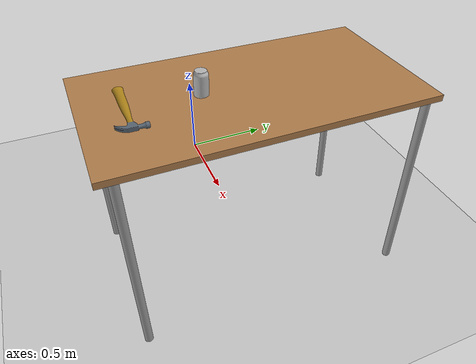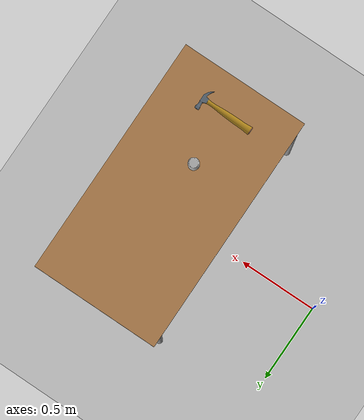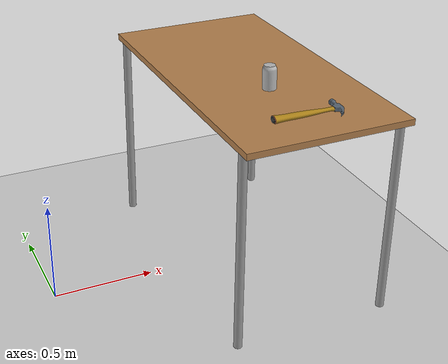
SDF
<sdf version="1.7">
 <world name="default">
  <light name="sun" type="directional">
   <pose>0 0 10 0 -0 0</pose>
   <diffuse>0.8 0.8 0.8 1</diffuse>
   <specular>0.2 0.2 0.2 1</specular>
   <attenuation>
    <range>1000</range>
    <constant>0.9</constant>
    <linear>0.01</linear>
    <quadratic>0.001</quadratic>
   </attenuation>
   <direction>-0.5 0.1 -0.9</direction>
   <spot><inner_angle>0</inner_angle><outer_angle>0</outer_angle><falloff>0</falloff></spot>
  </light>
  <model name="ground_plane">
   <static>1</static>
   <link name="link">
    <collision name="collision">
     <geometry><plane><normal>0 0 1</normal><size>100 100</size></plane></geometry>
     <surface>
      <contact><collide_bitmask>65535</collide_bitmask></contact>
      <friction><ode><mu>100</mu><mu2>50</mu2></ode></friction>
     </surface>
    </collision>
    <visual name="visual">
     <cast_shadows>0</cast_shadows>
     <geometry><plane><normal>0 0 1</normal><size>100 100</size></plane></geometry>
     <material>
      <script><uri>file://media/materials/scripts/gazebo.material</uri><name>Gazebo/Grey</name></script>
     </material>
    </visual>
   </link>
  </model>
  <gravity>0 0 -9.8</gravity>
  <magnetic_field>6e-06 2.3e-05 -4.2e-05</magnetic_field>
  <atmosphere type="adiabatic"/>
  <physics type="ode">
   <max_step_size>0.001</max_step_size>
   <real_time_factor>1</real_time_factor>
   <real_time_update_rate>1000</real_time_update_rate>
  </physics>
  <scene><ambient>0.4 0.4 0.4 1</ambient><background>0.7 0.7 0.7 1</background><shadows>1</shadows></scene>
  <spherical_coordinates>
   <surface_model>EARTH_WGS84</surface_model>
   <latitude_deg>0</latitude_deg>
   <longitude_deg>0</longitude_deg>
   <elevation>0</elevation>
   <heading_deg>0</heading_deg>
  </spherical_coordinates>
  <model name="table">
   <static>1</static>
   <link name="link">
    <collision name="surface">
     <pose>0 0 1 0 -0 0</pose>
     <geometry><box><size>1.5 0.8 0.03</size></box></geometry>
     <surface><friction><ode><mu>0.6</mu><mu2>0.6</mu2></ode></friction></surface>
    </collision>
    <visual name="visual1">
     <pose>0 0 1 0 -0 0</pose>
     <geometry><box><size>1.5 0.8 0.03</size></box></geometry>
     <material>
      <script><uri>file://media/materials/scripts/gazebo.material</uri><name>Gazebo/Wood</name></script>
     </material>
    </visual>
    <collision name="front_left_leg">
     <pose>0.68 0.38 0.5 0 -0 0</pose>
     <geometry><cylinder><radius>0.02</radius><length>1</length></cylinder></geometry>
    </collision>
    <visual name="front_left_leg">
     <pose>0.68 0.38 0.5 0 -0 0</pose>
     <geometry><cylinder><radius>0.02</radius><length>1</length></cylinder></geometry>
     <material>
      <script><uri>file://media/materials/scripts/gazebo.material</uri><name>Gazebo/Grey</name></script>
     </material>
    </visual>
    <collision name="front_right_leg">
     <pose>0.68 -0.38 0.5 0 -0 0</pose>
     <geometry><cylinder><radius>0.02</radius><length>1</length></cylinder></geometry>
    </collision>
    <visual name="front_right_leg">
     <pose>0.68 -0.38 0.5 0 -0 0</pose>
     <geometry><cylinder><radius>0.02</radius><length>1</length></cylinder></geometry>
     <material>
      <script><uri>file://media/materials/scripts/gazebo.material</uri><name>Gazebo/Grey</name></script>
     </material>
    </visual>
    <collision name="back_right_leg">
     <pose>-0.68 -0.38 0.5 0 -0 0</pose>
     <geometry><cylinder><radius>0.02</radius><length>1</length></cylinder></geometry>
    </collision>
    <visual name="back_right_leg">
     <pose>-0.68 -0.38 0.5 0 -0 0</pose>
     <geometry><cylinder><radius>0.02</radius><length>1</length></cylinder></geometry>
     <material>
      <script><uri>file://media/materials/scripts/gazebo.material</uri><name>Gazebo/Grey</name></script>
     </material>
    </visual>
    <collision name="back_left_leg">
     <pose>-0.68 0.38 0.5 0 -0 0</pose>
     <geometry><cylinder><radius>0.02</radius><length>1</length></cylinder></geometry>
    </collision>
    <visual name="back_left_leg">
     <pose>-0.68 0.38 0.5 0 -0 0</pose>
     <geometry><cylinder><radius>0.02</radius><length>1</length></cylinder></geometry>
     <material>
      <script><uri>file://media/materials/scripts/gazebo.material</uri><name>Gazebo/Grey</name></script>
     </material>
    </visual>
   </link>
   <pose>1.03014 -0.014132 0 0 0 -1.56871</pose>
  </model>
  <model name="hammer">
   <static>1</static>
   <link name="link">
    <collision name="collision">
     <geometry><mesh><uri>model://hammer/meshes/hammer.dae</uri></mesh></geometry>
    </collision>
    <visual name="visual"><geometry><mesh><uri>model://hammer/meshes/hammer.dae</uri></mesh></geometry></visual>
   </link>
   <pose>1.09376 -0.55217 1.03111 0 0 -1.58459</pose>
  </model>
  <model name="coke_can">
   <link name="link">
    <inertial>
     <pose>0 0 0.06 0 -0 0</pose>
     <mass>0.39</mass>
     <inertia>
      <ixx>0.00055575</ixx>
      <ixy>0</ixy>
      <ixz>0</ixz>
      <iyy>0.00055575</iyy>
      <iyz>0</iyz>
      <izz>0.0001755</izz>
     </inertia>
    </inertial>
    <collision name="collision">
     <pose>0.003937 0.004724 -0.18 0 -0 0</pose>
     <geometry><mesh><uri>model://coke_can/meshes/coke_can.dae</uri></mesh></geometry>
     <surface>
      <friction><ode><mu>1</mu><mu2>1</mu2></ode></friction>
      <contact><ode><kp>1e+07</kp><kd>1</kd><min_depth>0.001</min_depth><max_vel>0.1</max_vel></ode></contact>
     </surface>
    </collision>
    <visual name="visual">
     <pose>0.003937 0.004724 -0.18 0 -0 0</pose>
     <geometry><mesh><uri>model://coke_can/meshes/coke_can.dae</uri></mesh></geometry>
    </visual>
   </link>
   <pose>1.01589 -0.22843 1.00464 -0.035772 -0.005578 -0.001178</pose>
  </model>
 </world>
</sdf>
